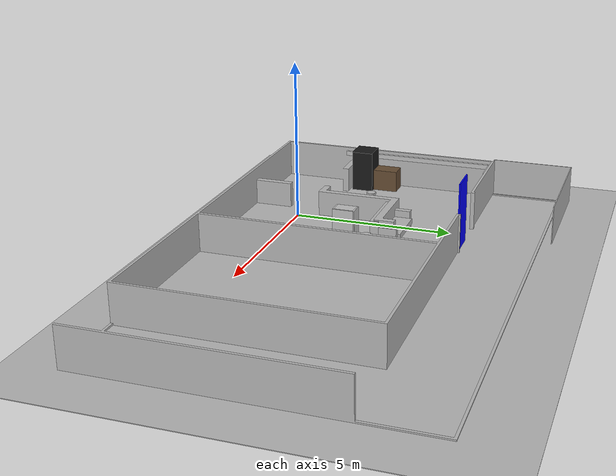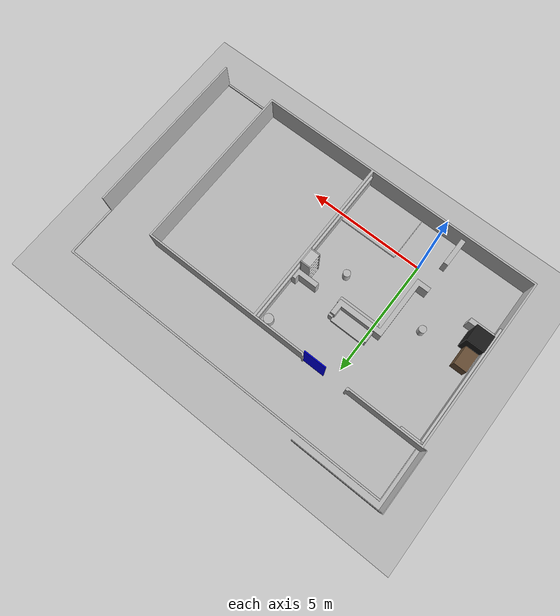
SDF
<sdf version="1.6">
 <world name="robotics_testlabs">
  <light name="sun" type="directional">
   <direction>0.5 0.1 -0.9</direction>
   <pose>0 0 10 0 0 0</pose>
   <name>sun</name>
   <specular>0.2 0.2 0.2 1</specular>
   <diffuse>0.8 0.8 0.8 1</diffuse>
   <attenuation>
    <range>1000</range>
    <quadratic>0.001</quadratic>
    <constant>0.9</constant>
    <linear>0.01</linear>
   </attenuation>
  </light>
  <model name="operator"><pose>-2.798 -1.499 1.0 0 0 0</pose><static>true</static><name>operator</name></model>
  <model name="corridor" type="waypoint">
   <pose>2.7 5 0 0 0 0</pose>
   <static>true</static>
   <name>corridor</name>
  </model>
  <model name="hallway" type="waypoint">
   <pose>0 5.5 0 0 0 0</pose>
   <static>true</static>
   <name>hallway</name>
  </model>
  <model name="bedroom" type="waypoint">
   <pose>-2.0 -1.0 0 0 0 0</pose>
   <static>true</static>
   <name>bedroom</name>
  </model>
  <model name="battery_point" type="waypoint">
   <pose>-2.8 2.0 0 0 0 0</pose>
   <static>true</static>
   <name>battery_point</name>
  </model>
  <model name="initial_pose" type="waypoint">
   <pose>0.586 4.259 0 0 0 0</pose>
   <static>true</static>
   <name>initial_pose</name>
  </model>
  <model name="robonurse_initial" type="waypoint">
   <pose>0.586 4.259 0 0 0 0</pose>
   <static>true</static>
   <name>robonurse_initial</name>
  </model>
  <model name="bookcase_waypoint" type="waypoint">
   <pose>2.58 2.66 0 0 0 0</pose>
   <static>true</static>
   <name>bookcase_waypoint</name>
  </model>
  <model name="entry_point" type="waypoint">
   <pose>1.897 4.295 0 0 0 0</pose>
   <static>true</static>
   <name>entry_point</name>
  </model>
  <model name="exit" type="waypoint">
   <pose>-1.48 -0.031 0 0 0 3.1415</pose>
   <static>true</static>
   <name>exit</name>
  </model>
  <model name="exit_pre" type="waypoint">
   <pose>0 0 0 0 0 3.1415</pose>
   <static>true</static>
   <name>exit_pre</name>
  </model>
  <model name="registration_table1" type="waypoint">
   <pose>2.0 1.5 0 0 0 3.1415</pose>
   <static>true</static>
   <name>registration_table1</name>
  </model>
  <model name="registration_table2" type="waypoint">
   <pose>2.0 1.5 0 0 0 3.1415</pose>
   <static>true</static>
   <name>registration_table2</name>
  </model>
  <model name="registration_table3" type="waypoint">
   <pose>2.0 1.5 0 0 0 3.1415</pose>
   <static>true</static>
   <name>registration_table3</name>
  </model>
  <model name="exit_1_rips" type="waypoint">
   <pose>-1.48 -0.031 0 0 0 3.1415</pose>
   <static>true</static>
   <name>exit_1_rips</name>
  </model>
  <model name="exit_2_rips" type="waypoint">
   <pose>-1.48 -0.031 0 0 0 3.1415</pose>
   <static>true</static>
   <name>exit_2_rips</name>
  </model>
  <model name="exit_3_rips" type="waypoint">
   <pose>-1.48 -0.031 0 0 0 3.1415</pose>
   <static>true</static>
   <name>exit_3_rips</name>
  </model>
  <model name="exit_4_rips" type="waypoint">
   <pose>-1.48 -0.031 0 0 0 3.1415</pose>
   <static>true</static>
   <name>exit_4_rips</name>
  </model>
  <model name="door_navigation" type="waypoint">
   <pose>-0.168 6.216 0 0 0 -1.5708</pose>
   <static>true</static>
   <name>door_navigation</name>
  </model>
  <model name="door_opening_left_dest" type="waypoint">
   <pose>-0.168 6.216 0 0 0 1.5708</pose>
   <static>true</static>
   <name>door_opening_left_dest</name>
  </model>
  <model name="door_opening_right_dest" type="waypoint">
   <pose>0.862 6.216 0 0 0 1.5708</pose>
   <static>true</static>
   <name>door_opening_right_dest</name>
  </model>
  <model name="door_opening_left_start" type="waypoint">
   <pose>-0.168 4.8 0 0 0 1.5708</pose>
   <static>true</static>
   <name>door_opening_left_start</name>
  </model>
  <model name="door_opening_right_start" type="waypoint">
   <pose>0.862 4.8 0 0 0 1.5708</pose>
   <static>true</static>
   <name>door_opening_right_start</name>
  </model>
  <model name="help_me_carry_starting_point" type="waypoint">
   <pose>1.65 2.0 0 0 0 1.5708</pose>
   <static>true</static>
   <name>help_me_carry_starting_point</name>
  </model>
  <model name="avoid_that_start" type="waypoint">
   <pose>2.2 2.2 0 0 0 -2.459</pose>
   <static>true</static>
   <name>avoid_that_start</name>
  </model>
  <model name="avoid_that_wp1" type="waypoint">
   <pose>2.648 -0.579 0 0 0 -3.137</pose>
   <static>true</static>
   <name>avoid_that_wp1</name>
  </model>
  <model name="avoid_that_wp2" type="waypoint">
   <pose>0.347 -0.665 0 0 0 1.008</pose>
   <static>true</static>
   <name>avoid_that_wp2</name>
  </model>
  <model name="avoid_that_wp3" type="waypoint">
   <pose>2.648 -0.579 0 0 0 -3.137</pose>
   <static>true</static>
   <name>avoid_that_wp3</name>
  </model>
  <model name="what_did_you_say_start" type="waypoint">
   <pose>0.347 -0.665 0 0 0 1.008</pose>
   <static>true</static>
   <name>what_did_you_say_start</name>
  </model>
  <model name="person_rec_learning" type="waypoint">
   <pose>2.661 4.052 0 0 0 3.139</pose>
   <static>true</static>
   <name>person_rec_learning</name>
  </model>
  <model name="person_rec_living_room_1" type="waypoint">
   <pose>2.016 3.025 0 0 0 -1.572</pose>
   <static>true</static>
   <name>person_rec_living_room_1</name>
  </model>
  <model name="person_rec_living_room_2" type="waypoint">
   <pose>2.482 2.27 0 0 0 -1.899</pose>
   <static>true</static>
   <name>person_rec_living_room_2</name>
  </model>
  <model name="person_rec_living_room_3" type="waypoint">
   <pose>1.51 2.22 0 0 0 -0.971</pose>
   <static>true</static>
   <name>person_rec_living_room_3</name>
  </model>
  <model name="gpsr_meeting_point" type="waypoint">
   <pose>2.2 1.5 0 0 0 3.1415</pose>
   <static>true</static>
   <name>gpsr_meeting_point</name>
  </model>
  <model name="operator_pose" type="waypoint"><static>true</static><name>operator_pose</name></model>
  <model name="explore1" type="waypoint">
   <pose>2.0 4.0 0 0 0 0.0</pose>
   <static>true</static>
   <name>explore1</name>
  </model>
  <model name="explore2" type="waypoint">
   <pose>2.0 2.5 0 0 0 0.0</pose>
   <static>true</static>
   <name>explore2</name>
  </model>
  <model name="explore3" type="waypoint">
   <pose>2.0 2.0 0 0 0 3.14</pose>
   <static>true</static>
   <name>explore3</name>
  </model>
  <model name="explore4" type="waypoint">
   <pose>2.0 1.5 0 0 0 0.0</pose>
   <static>true</static>
   <name>explore4</name>
  </model>
  <model name="explore5" type="waypoint">
   <pose>1.0 0.3 0 0 0 0.0</pose>
   <static>true</static>
   <name>explore5</name>
  </model>
  <model name="explore6" type="waypoint">
   <pose>1.5 -0.5 0 0 0 -1.57</pose>
   <static>true</static>
   <name>explore6</name>
  </model>
  <model name="explore7" type="waypoint">
   <pose>-1.5 0.0 0 0 0 3.14</pose>
   <static>true</static>
   <name>explore7</name>
  </model>
  <model name="explore8" type="waypoint">
   <pose>-1.5 2.0 0 0 0 2.36</pose>
   <static>true</static>
   <name>explore8</name>
  </model>
  <model name="explore9" type="waypoint">
   <pose>-0.5 4.0 0 0 0 3.14</pose>
   <static>true</static>
   <name>explore9</name>
  </model>
  <model name="explore10" type="waypoint">
   <pose>0.5 4.5 0 0 0 -1.57</pose>
   <static>true</static>
   <name>explore10</name>
  </model>
  <model name="wp_test_nav1" type="waypoint">
   <pose>2.032 1.03 0 0 0 3.138</pose>
   <static>true</static>
   <name>wp_test_nav1</name>
  </model>
  <model name="livingroom" type="room">
   <link name="in">
    <virtual_volume name="in">
     <geometry><box><size>2.5 3.6 0</size></box></geometry>
     <pose>-0.15 -0.1 0.0 0 0 0</pose>
     <name>in</name>
    </virtual_volume>
    <name>in</name>
   </link>
   <pose>1.5 1.0 0.0 0 0 0</pose>
   <static>true</static>
   <name>livingroom</name>
  </model>
  <model name="kitchen" type="room">
   <link name="in">
    <virtual_volume name="in">
     <geometry><box><size>1.2 1.3 0</size></box></geometry>
     <pose>0.2 -0.15 0.0 0 0 0</pose>
     <name>in</name>
    </virtual_volume>
    <name>in</name>
   </link>
   <pose>2.2 4.5 0.0 0 0 0</pose>
   <static>true</static>
   <name>kitchen</name>
  </model>
  <model name="bedroom" type="room">
   <link name="in">
    <virtual_volume name="in">
     <geometry><box><size>1.5 1.2 0</size></box></geometry>
     <pose>0.55 0.1 0.0 0 0 0</pose>
     <name>in</name>
    </virtual_volume>
    <name>in</name>
   </link>
   <pose>-2.0 -0.5 0.0 0 0 0</pose>
   <static>true</static>
   <name>bedroom</name>
  </model>
  <model name="workshop" type="room">
   <link name="in">
    <virtual_volume name="in">
     <geometry><box><size>2.0 3.8 0</size></box></geometry>
     <pose>0.2 0.1 0.0 0 0 0</pose>
     <name>in</name>
    </virtual_volume>
    <name>in</name>
   </link>
   <pose>-2.0 3.0 0.0 0 0 0</pose>
   <static>true</static>
   <name>workshop</name>
  </model>
  <model name="hallway" type="room">
   <link name="in">
    <virtual_volume name="in">
     <geometry><box><size>1.6 1.8 0</size></box></geometry>
     <pose>0.3 -0.1 0.0 0 0 0</pose>
     <name>in</name>
    </virtual_volume>
    <name>in</name>
   </link>
   <pose>0.0 4.5 0.0 0 0 0</pose>
   <static>true</static>
   <name>hallway</name>
  </model>
  <include name="walls"><name>walls</name><uri>model://robotics_testlabs/walls</uri></include>
  <include name="door2">
   <pose>1.31 5.585 0 0 0 -1.57079632679</pose>
   <name>door2</name>
   <uri>model://robotics_testlabs/blue_door_right</uri>
  </include>
  <include name="floor"><name>floor</name><uri>model://floor</uri></include>
  <include name="plant">
   <pose>3.26 5.19 0 0 0 0</pose>
   <name>plant</name>
   <uri>model://robotics_testlabs/plant</uri>
  </include>
  <include name="trashbin">
   <pose>2.0 2.0 0 0 0 0</pose>
   <name>trashbin</name>
   <uri>model://trashbin</uri>
  </include>
  <include name="trashbin2">
   <pose>-1.5 2.0 0 0 0 0</pose>
   <name>trashbin2</name>
   <uri>model://trashbin</uri>
  </include>
  <include name="flight_case">
   <pose>-3.28 1.23 0.0 0 0 0</pose>
   <name>flight_case</name>
   <uri>model://robotics_testlabs/flight_case</uri>
  </include>
  <include name="battery_table">
   <pose>-3.36 1.99 0.0 0 0 0</pose>
   <name>battery_table</name>
   <uri>model://robotics_testlabs/battery_table</uri>
  </include>
  <include name="hallway_table">
   <pose>0.72 3.45 0.02 0 0 1.57079632679</pose>
   <name>hallway_table</name>
   <uri>model://ddw/couch</uri>
  </include>
  <include name="bed">
   <pose>-2.725 -0.52 0 0 0 1.57079632679</pose>
   <name>bed</name>
   <uri>model://robotics_testlab_B/bed</uri>
  </include>
  <include name="bookcase">
   <pose>3.24 2.713 0 0 0 3.1415</pose>
   <name>bookcase</name>
   <uri>model://robotics_testlabs/plastic_cabinet</uri>
  </include>
  <include name="electro_bar_1">
   <pose>-3.72 2.96 0.94 0 0 0</pose>
   <name>electro_bar_1</name>
   <uri>model://robotics_testlabs/electro_bar_1</uri>
  </include>
  <include name="electro_bar_2">
   <pose>3.5 2.96 0.94 0 0 0</pose>
   <name>electro_bar_2</name>
   <uri>model://robotics_testlabs/electro_bar_2</uri>
  </include>
  <physics type="ode">
   <real_time_update_rate>333.0</real_time_update_rate>
   <max_step_size>0.003</max_step_size>
   <ode><constraints><cfm>0.0001</cfm></constraints><solver type="quick"><iters>100</iters></solver></ode>
  </physics>
  <name>robotics_testlabs</name>
 </world>
</sdf>

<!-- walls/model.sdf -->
<sdf version="1.6">
  <model name="robotics_testlabs/walls">
    <link name="1_link">
      <collision name="1_col">
        <geometry>
          <mesh>
            <uri>model://robotics_testlabs/walls/shape/heightmap.stl</uri>
          </mesh>
        </geometry>
      </collision>
      <visual name="1_vis">
        <geometry>
          <mesh>
            <uri>model://robotics_testlabs/walls/shape/heightmap.stl</uri>
          </mesh>
        </geometry>
      </visual>
      <pose>0 0 0 0 0 0</pose>
    </link>
    <static>true</static>
  </model>
</sdf>

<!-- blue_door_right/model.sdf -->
<sdf version="1.6">
  <model name="robotics_testlabs/blue_door_right">
    <link name="1_link">
      <collision name="1_col">
        <geometry>
          <box>
            <size>0.04 0.926 2.12</size>
          </box>
        </geometry>
      </collision>
      <visual name="1_vis">
        <geometry>
          <box>
            <size>0.04 0.926 2.12</size>
          </box>
        </geometry>
        <material>
          <ambient>0 0 1 1</ambient>
        </material>
      </visual>
      <pose>0.025 -0.473 1.06 0 0 0</pose>
    </link>
    <static>true</static>
  </model>
</sdf>

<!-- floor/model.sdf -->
<sdf version="1.6">
  <model name="floor" type="floor">
    <link name="1_link">
      <collision name="1_col">
        <geometry>
          <box>
            <size>200 200 0.02</size>
          </box>
        </geometry>
      </collision>
      <visual name="1_vis">
        <geometry>
          <box>
            <size>200 200 0.02</size>
          </box>
        </geometry>
      </visual>
      <pose>0 0 -0.01 0 0 0</pose>
    </link>
    <static>true</static>
  </model>
</sdf>

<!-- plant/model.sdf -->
<sdf version="1.6">
  <model name="robotics_testlabs/plant">
    <link name="1_link">
      <collision name="1_col">
        <geometry>
          <cylinder>
            <length>0.375</length>
            <radius>0.2</radius>
          </cylinder>
        </geometry>
      </collision>
      <visual name="1_vis">
        <geometry>
          <cylinder>
            <length>0.375</length>
            <radius>0.2</radius>
          </cylinder>
        </geometry>
      </visual>
      <pose>0 0 0.1875 0 0 0</pose>
    </link>
    <static>true</static>
  </model>
</sdf>

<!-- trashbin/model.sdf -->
<sdf version="1.6">
  <model name="robotics_testlabs/trashbin">
    <link name="1_link">
      <collision name="1_col">
        <geometry>
          <cylinder>
            <length>0.5</length>
            <radius>0.15</radius>
          </cylinder>
        </geometry>
      </collision>
      <visual name="1_vis">
        <geometry>
          <cylinder>
            <length>0.5</length>
            <radius>0.15</radius>
          </cylinder>
        </geometry>
      </visual>
      <pose>0 0 0.25 0 0 0</pose>
    </link>
    <static>true</static>
    <link name="on_top_of">
      <virtual_volume name="on_top_of_vv">
        <geometry>
          <box>
            <size>0.3 0.3 0.17</size>
          </box>
        </geometry>
        <pose>0.0 0.0 0.5 0 0 0</pose>
      </virtual_volume>
    </link>
    <link name="in_front_of">
      <virtual_volume name="in_front_of_vv">
        <geometry>
          <box>
            <size>0.05 0.05 0.01</size>
          </box>
        </geometry>
      </virtual_volume>
      <pose>0.6 0 0 0 0 0</pose>
    </link>
  </model>
</sdf>

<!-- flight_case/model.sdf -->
<sdf version="1.6">
  <model name="robotics_testlabs/flight_case">
    <link name="1_link">
      <collision name="1_col">
        <geometry>
          <box>
            <size>0.75 0.7 1.33</size>
          </box>
        </geometry>
      </collision>
      <visual name="1_vis">
        <geometry>
          <box>
            <size>0.75 0.7 1.33</size>
          </box>
        </geometry>
        <material>
          <ambient>0.1 0.1 0.1 1</ambient>
        </material>
      </visual>
      <pose>0 0 0.665 0 0 0</pose>
    </link>
    <static>true</static>
  </model>
</sdf>

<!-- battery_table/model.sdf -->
<sdf version="1.6">
  <model name="robotics_testlabs/battery_table">
    <link name="1_link">
      <collision name="1_col">
        <geometry>
          <box>
            <size>0.55 0.8 0.7</size>
          </box>
        </geometry>
      </collision>
      <visual name="1_vis">
        <geometry>
          <box>
            <size>0.55 0.8 0.7</size>
          </box>
        </geometry>
        <material>
          <ambient>0.4 0.3 0.2 1</ambient>
        </material>
      </visual>
      <pose>0 0 0.35 0 0 0</pose>
    </link>
    <static>true</static>
  </model>
</sdf>

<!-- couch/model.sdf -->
<sdf version="1.6">
  <model name="couch">
    <link name="back">
      <collision name="back_col">
        <geometry>
          <box>
            <size>0.27 1.73 0.75</size>
          </box>
        </geometry>
      </collision>
      <visual name="back_vis">
        <geometry>
          <box>
            <size>0.27 1.73 0.75</size>
          </box>
        </geometry>
      </visual>
      <pose>-0.4 0 0.37 0 0 0</pose>
    </link>
    <link name="side_left">
      <collision name="side_left_col">
        <geometry>
          <box>
            <size>0.57 0.18 0.57</size>
          </box>
        </geometry>
      </collision>
      <visual name="side_left_vis">
        <geometry>
          <box>
            <size>0.57 0.18 0.57</size>
          </box>
        </geometry>
      </visual>
      <pose>0 -0.77 0.28 0 0 0</pose>
    </link>
    <link name="side_right">
      <collision name="side_right_col">
        <geometry>
          <box>
            <size>0.57 0.18 0.57</size>
          </box>
        </geometry>
      </collision>
      <visual name="side_right_vis">
        <geometry>
          <box>
            <size>0.57 0.18 0.57</size>
          </box>
        </geometry>
      </visual>
      <pose>0 0.77 0.28 0 0 0</pose>
    </link>
    <link name="seat">
      <collision name="seat_col">
        <geometry>
          <box>
            <size>0.62 1.36 0.17</size>
          </box>
        </geometry>
      </collision>
      <visual name="seat_vis">
        <geometry>
          <box>
            <size>0.62 1.36 0.17</size>
          </box>
        </geometry>
      </visual>
      <pose>0.05 0 0.26 0 0 0</pose>
    </link>
    <link name="on_top_of">
      <virtual_volume name="on_top_of_vv">
        <geometry>
          <box>
            <size>0.46 1.3 0.25</size>
          </box>
        </geometry>
        <pose>0.02 0.0 0.44 0 0 0</pose>
      </virtual_volume>
    </link>
    <link name="in_front_of">
      <virtual_volume name="in_front_of_vv">
        <geometry>
          <box>
            <size>0.2 1.16 0.01</size>
          </box>
        </geometry>
        <pose>0.75 0.0 0.005 0 0 0</pose>
      </virtual_volume>
    </link>
    <static>true</static>
  </model>
</sdf>

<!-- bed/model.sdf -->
<sdf version="1.6">
  <model name="bed">
    <link name="in_front_of">
      <virtual_volume name="in_front_of_vv">
        <geometry>
          <box>
            <size>0.6 1.2 1</size>
          </box>
        </geometry>
        <pose>0.0 -0.6 0.5 0 0 0</pose>
      </virtual_volume>
    </link>
    <static>true</static>
  </model>
</sdf>

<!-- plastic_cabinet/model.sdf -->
<sdf version="1.6">
  <model name="robotics_testlabs/plastic_cabinet" type="shelf">
    <link name="1_link">
      <collision name="1_col">
        <geometry>
          <box>
            <size>0.414 0.043 1.761</size>
          </box>
        </geometry>
      </collision>
      <visual name="1_vis">
        <geometry>
          <box>
            <size>0.414 0.043 1.761</size>
          </box>
        </geometry>
        <material>
          <ambient>0.75 0.75 0.75 1</ambient>
        </material>
      </visual>
      <pose>0 -0.3035 0.8805 0 0 0</pose>
    </link>
    <link name="2_link">
      <collision name="2_col">
        <geometry>
          <box>
            <size>0.414 0.043 1.761</size>
          </box>
        </geometry>
      </collision>
      <visual name="2_vis">
        <geometry>
          <box>
            <size>0.414 0.043 1.761</size>
          </box>
        </geometry>
        <material>
          <ambient>0.75 0.75 0.75 1</ambient>
        </material>
      </visual>
      <pose>0 0.3035 0.8805 0 0 0</pose>
    </link>
    <link name="3_link">
      <collision name="3_col">
        <geometry>
          <box>
            <size>0.043 0.65 1.761</size>
          </box>
        </geometry>
      </collision>
      <visual name="3_vis">
        <geometry>
          <box>
            <size>0.043 0.65 1.761</size>
          </box>
        </geometry>
        <material>
          <ambient>0.75 0.75 0.75 1</ambient>
        </material>
      </visual>
      <pose>-0.1855 0 0.8805 0 0 0</pose>
    </link>
    <link name="4_link">
      <collision name="4_col">
        <geometry>
          <box>
            <size>0.371 0.564 0.034</size>
          </box>
        </geometry>
      </collision>
      <visual name="4_vis">
        <geometry>
          <box>
            <size>0.371 0.564 0.034</size>
          </box>
        </geometry>
        <material>
          <ambient>0.75 0.75 0.75 1</ambient>
        </material>
      </visual>
      <pose>0.0215 0 1.744 0 0 0</pose>
    </link>
    <link name="5_link">
      <collision name="5_col">
        <geometry>
          <box>
            <size>0.371 0.564 0.031</size>
          </box>
        </geometry>
      </collision>
      <visual name="5_vis">
        <geometry>
          <box>
            <size>0.371 0.564 0.031</size>
          </box>
        </geometry>
        <material>
          <ambient>0.75 0.75 0.75 1</ambient>
        </material>
      </visual>
      <pose>0.0215 0 0.0155 0 0 0</pose>
    </link>
    <link name="6_link">
      <collision name="6_col">
        <geometry>
          <box>
            <size>0.371 0.564 0.031</size>
          </box>
        </geometry>
      </collision>
      <visual name="6_vis">
        <geometry>
          <box>
            <size>0.371 0.564 0.031</size>
          </box>
        </geometry>
        <material>
          <ambient>0.75 0.75 0.75 1</ambient>
        </material>
      </visual>
      <pose>0.0215 0 0.3555 0 0 0</pose>
    </link>
    <link name="7_link">
      <collision name="7_col">
        <geometry>
          <box>
            <size>0.371 0.564 0.031</size>
          </box>
        </geometry>
      </collision>
      <visual name="7_vis">
        <geometry>
          <box>
            <size>0.371 0.564 0.031</size>
          </box>
        </geometry>
        <material>
          <ambient>0.75 0.75 0.75 1</ambient>
        </material>
      </visual>
      <pose>0.0215 0 0.7065 0 0 0</pose>
    </link>
    <link name="8_link">
      <collision name="8_col">
        <geometry>
          <box>
            <size>0.371 0.564 0.031</size>
          </box>
        </geometry>
      </collision>
      <visual name="8_vis">
        <geometry>
          <box>
            <size>0.371 0.564 0.031</size>
          </box>
        </geometry>
        <material>
          <ambient>0.75 0.75 0.75 1</ambient>
        </material>
      </visual>
      <pose>0.0215 0 1.0575 0 0 0</pose>
    </link>
    <link name="9_link">
      <collision name="9_col">
        <geometry>
          <box>
            <size>0.371 0.564 0.031</size>
          </box>
        </geometry>
      </collision>
      <visual name="9_vis">
        <geometry>
          <box>
            <size>0.371 0.564 0.031</size>
          </box>
        </geometry>
        <material>
          <ambient>0.75 0.75 0.75 1</ambient>
        </material>
      </visual>
      <pose>0.0215 0 1.4135 0 0 0</pose>
    </link>
    <link name="in_front_of">
      <virtual_volume name="in_front_of_vv">
        <geometry>
          <box>
            <size>0.2 0.45 0.01</size>
          </box>
        </geometry>
        <pose>0.707 0.0 0.005 0 0 0</pose>
      </virtual_volume>
    </link>
    <link name="shelf1">
      <virtual_volume name="shelf1_vv">
        <geometry>
          <box>
            <size>0.311 0.504 0.27</size>
          </box>
        </geometry>
        <pose>0.0215 0.0 0.186 0 0 0</pose>
      </virtual_volume>
    </link>
    <link name="shelf2">
      <virtual_volume name="shelf2_vv">
        <geometry>
          <box>
            <size>0.311 0.504 0.27</size>
          </box>
        </geometry>
        <pose>0.0215 0.0 0.526 0 0 0</pose>
      </virtual_volume>
    </link>
    <link name="shelf3">
      <virtual_volume name="shelf3_vv">
        <geometry>
          <box>
            <size>0.311 0.504 0.27</size>
          </box>
        </geometry>
        <pose>0.0215 0.0 0.877 0 0 0</pose>
      </virtual_volume>
    </link>
    <link name="on_top_of">
      <virtual_volume name="on_top_of_vv">
        <geometry>
          <box>
            <size>0.311 0.504 0.27</size>
          </box>
        </geometry>
        <pose>0.0215 0.0 0.877 0 0 0</pose>
      </virtual_volume>
    </link>
    <link name="shelf4">
      <virtual_volume name="shelf4_vv">
        <geometry>
          <box>
            <size>0.311 0.504 0.27</size>
          </box>
        </geometry>
        <pose>0.0215 0.0 1.228 0 0 0</pose>
      </virtual_volume>
    </link>
    <link name="shelf5">
      <virtual_volume name="shelf5_vv">
        <geometry>
          <box>
            <size>0.311 0.504 0.27</size>
          </box>
        </geometry>
        <pose>0.0215 0.0 1.584 0 0 0</pose>
      </virtual_volume>
    </link>
    <static>true</static>
  </model>
</sdf>

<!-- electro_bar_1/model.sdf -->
<sdf version="1.6">
  <model name="robotics_testlabs/electro_bar_1">
    <link name="1_link">
      <collision name="1_col">
        <geometry>
          <box>
            <size>0.095 5.085 0.15</size>
          </box>
        </geometry>
      </collision>
      <visual name="1_vis">
        <geometry>
          <box>
            <size>0.095 5.085 0.15</size>
          </box>
        </geometry>
        <material>
          <ambient>0.75 0.75 0.75 1</ambient>
        </material>
      </visual>
      <pose>0.015 0 0.075 0 0 0</pose>
    </link>
    <link name="2_link">
      <collision name="2_col">
        <geometry>
          <box>
            <size>0.91 0.095 0.15</size>
          </box>
        </geometry>
      </collision>
      <visual name="2_vis">
        <geometry>
          <box>
            <size>0.91 0.095 0.15</size>
          </box>
        </geometry>
        <material>
          <ambient>0.75 0.75 0.75 1</ambient>
        </material>
      </visual>
      <pose>0.4225 2.495 0.075 0 0 0</pose>
    </link>
    <static>true</static>
  </model>
</sdf>

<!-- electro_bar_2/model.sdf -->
<sdf version="1.6">
  <model name="robotics_testlabs/electro_bar_2">
    <link name="1_link">
      <collision name="1_col">
        <geometry>
          <box>
            <size>0.095 7.07 0.15</size>
          </box>
        </geometry>
      </collision>
      <visual name="1_vis">
        <geometry>
          <box>
            <size>0.095 7.07 0.15</size>
          </box>
        </geometry>
        <material>
          <ambient>0.75 0.75 0.75 1</ambient>
        </material>
      </visual>
      <pose>0.0 -0.9925 0.075 0 0 0</pose>
    </link>
    <static>true</static>
  </model>
</sdf>
